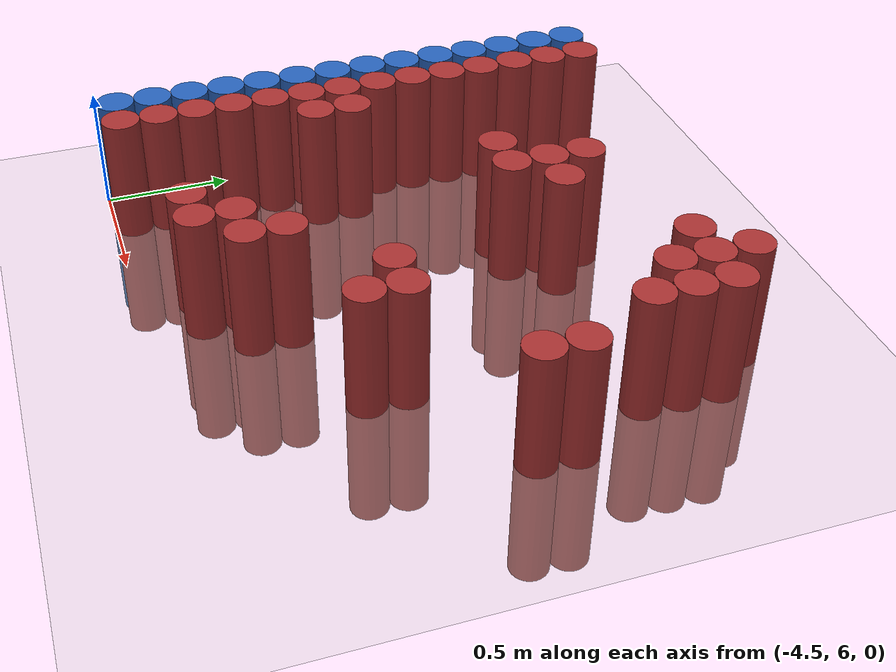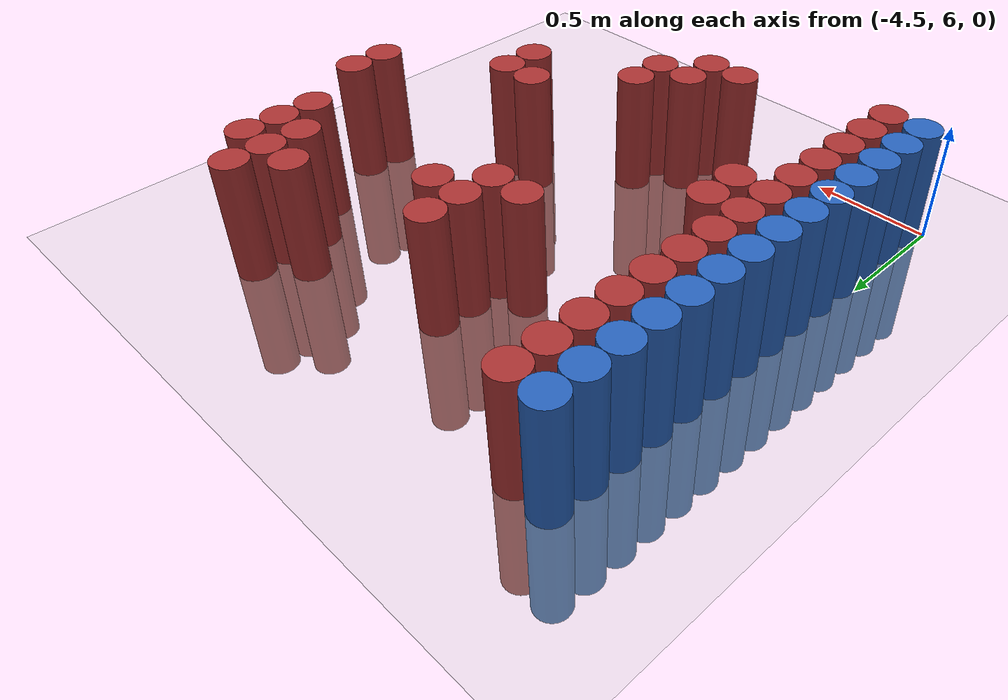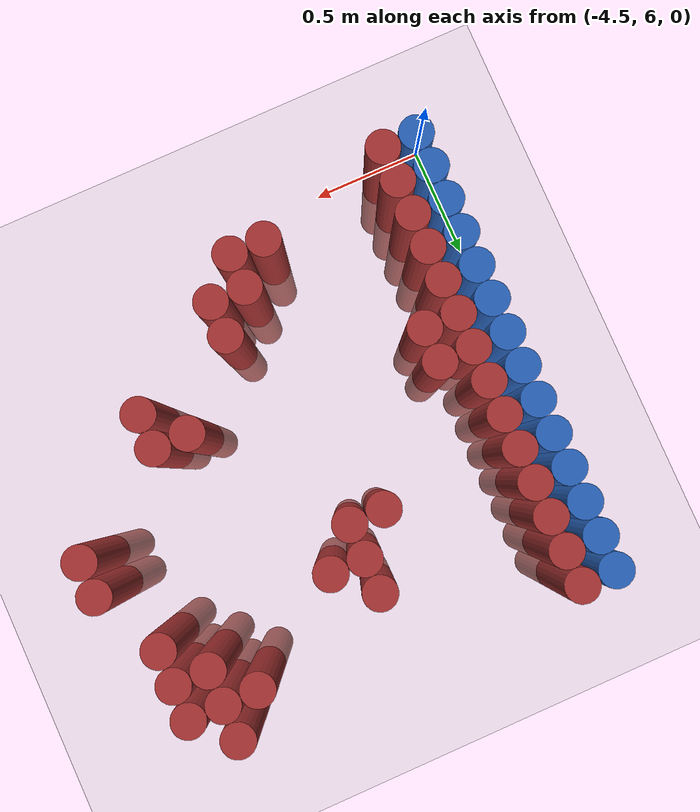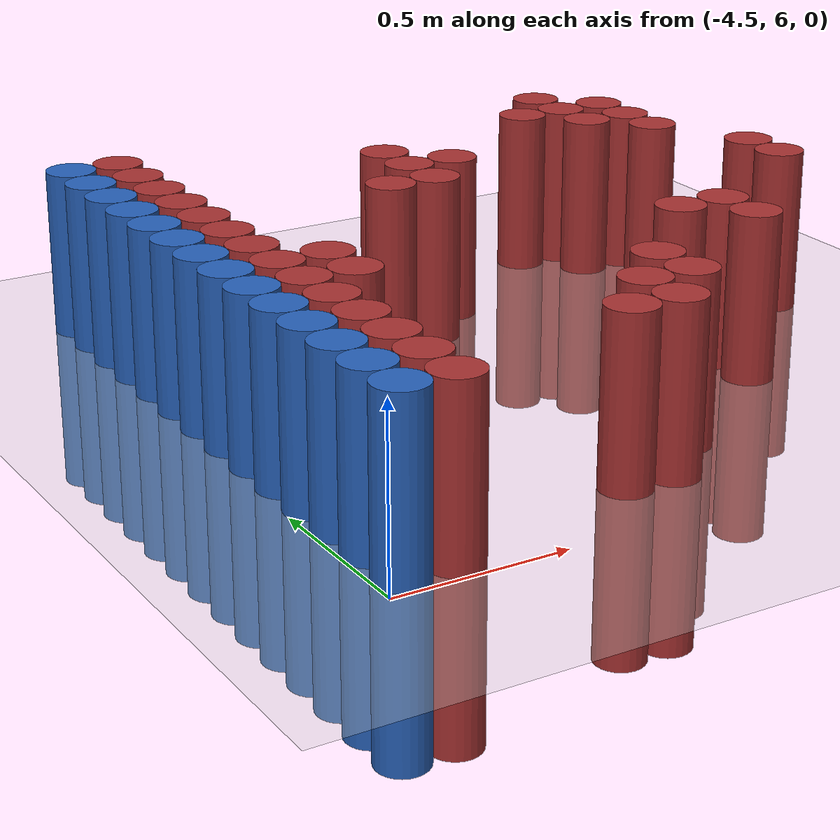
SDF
<sdf version="1.6">
 <world name="default">
  <model name="ground_plane">
   <static>1</static>
   <link name="link">
    <collision name="collision">
     <geometry><plane><normal>0 0 1</normal><size>100 100</size></plane></geometry>
     <surface><friction><ode><mu>100</mu><mu2>50</mu2></ode></friction></surface>
    </collision>
    <visual name="visual">
     <cast_shadows>0</cast_shadows>
     <geometry><plane><normal>0 0 1</normal><size>100 100</size></plane></geometry>
     <material>
      <script><uri>file://media/materials/scripts/gazebo.material</uri><name>Gazebo/Grey</name></script>
     </material>
    </visual>
   </link>
  </model>
  <model name="unit_cylinder_102">
   <static>1</static>
   <pose>-4.425000 6.075000 0.000000 0.000000 0.000000 0.000000</pose>
   <link name="link">
    <inertial>
     <mass>1</mass>
     <inertia><ixx>0.145833</ixx><ixy>0</ixy><ixz>0</ixz><iyy>0.145833</iyy><iyz>0</iyz><izz>0.125</izz></inertia>
    </inertial>
    <collision name="collision">
     <geometry><cylinder><radius>0.075000</radius><length>1</length></cylinder></geometry>
    </collision>
    <visual name="visual">
     <geometry><cylinder><radius>0.075000</radius><length>1</length></cylinder></geometry>
     <material>
      <ambient>0.152000 0.379000 0.720000 1</ambient>
      <diffuse>0.152000 0.379000 0.720000 1</diffuse>
     </material>
     <material>
      <script><name>Gazebo/Grey</name><uri>file://media/materials/scripts/gazebo.material</uri></script>
     </material>
    </visual>
   </link>
  </model>
  <model name="unit_cylinder_103">
   <static>1</static>
   <pose>-4.425000 6.225000 0.000000 0.000000 0.000000 0.000000</pose>
   <link name="link">
    <inertial>
     <mass>1</mass>
     <inertia><ixx>0.145833</ixx><ixy>0</ixy><ixz>0</ixz><iyy>0.145833</iyy><iyz>0</iyz><izz>0.125</izz></inertia>
    </inertial>
    <collision name="collision">
     <geometry><cylinder><radius>0.075000</radius><length>1</length></cylinder></geometry>
    </collision>
    <visual name="visual">
     <geometry><cylinder><radius>0.075000</radius><length>1</length></cylinder></geometry>
     <material>
      <ambient>0.152000 0.379000 0.720000 1</ambient>
      <diffuse>0.152000 0.379000 0.720000 1</diffuse>
     </material>
     <material>
      <script><name>Gazebo/Grey</name><uri>file://media/materials/scripts/gazebo.material</uri></script>
     </material>
    </visual>
   </link>
  </model>
  <model name="unit_cylinder_104">
   <static>1</static>
   <pose>-4.425000 6.375000 0.000000 0.000000 0.000000 0.000000</pose>
   <link name="link">
    <inertial>
     <mass>1</mass>
     <inertia><ixx>0.145833</ixx><ixy>0</ixy><ixz>0</ixz><iyy>0.145833</iyy><iyz>0</iyz><izz>0.125</izz></inertia>
    </inertial>
    <collision name="collision">
     <geometry><cylinder><radius>0.075000</radius><length>1</length></cylinder></geometry>
    </collision>
    <visual name="visual">
     <geometry><cylinder><radius>0.075000</radius><length>1</length></cylinder></geometry>
     <material>
      <ambient>0.152000 0.379000 0.720000 1</ambient>
      <diffuse>0.152000 0.379000 0.720000 1</diffuse>
     </material>
     <material>
      <script><name>Gazebo/Grey</name><uri>file://media/materials/scripts/gazebo.material</uri></script>
     </material>
    </visual>
   </link>
  </model>
  <model name="unit_cylinder_105">
   <static>1</static>
   <pose>-4.425000 6.525000 0.000000 0.000000 0.000000 0.000000</pose>
   <link name="link">
    <inertial>
     <mass>1</mass>
     <inertia><ixx>0.145833</ixx><ixy>0</ixy><ixz>0</ixz><iyy>0.145833</iyy><iyz>0</iyz><izz>0.125</izz></inertia>
    </inertial>
    <collision name="collision">
     <geometry><cylinder><radius>0.075000</radius><length>1</length></cylinder></geometry>
    </collision>
    <visual name="visual">
     <geometry><cylinder><radius>0.075000</radius><length>1</length></cylinder></geometry>
     <material>
      <ambient>0.152000 0.379000 0.720000 1</ambient>
      <diffuse>0.152000 0.379000 0.720000 1</diffuse>
     </material>
     <material>
      <script><name>Gazebo/Grey</name><uri>file://media/materials/scripts/gazebo.material</uri></script>
     </material>
    </visual>
   </link>
  </model>
  <model name="unit_cylinder_106">
   <static>1</static>
   <pose>-4.425000 6.675000 0.000000 0.000000 0.000000 0.000000</pose>
   <link name="link">
    <inertial>
     <mass>1</mass>
     <inertia><ixx>0.145833</ixx><ixy>0</ixy><ixz>0</ixz><iyy>0.145833</iyy><iyz>0</iyz><izz>0.125</izz></inertia>
    </inertial>
    <collision name="collision">
     <geometry><cylinder><radius>0.075000</radius><length>1</length></cylinder></geometry>
    </collision>
    <visual name="visual">
     <geometry><cylinder><radius>0.075000</radius><length>1</length></cylinder></geometry>
     <material>
      <ambient>0.152000 0.379000 0.720000 1</ambient>
      <diffuse>0.152000 0.379000 0.720000 1</diffuse>
     </material>
     <material>
      <script><name>Gazebo/Grey</name><uri>file://media/materials/scripts/gazebo.material</uri></script>
     </material>
    </visual>
   </link>
  </model>
  <model name="unit_cylinder_107">
   <static>1</static>
   <pose>-4.425000 6.825000 0.000000 0.000000 0.000000 0.000000</pose>
   <link name="link">
    <inertial>
     <mass>1</mass>
     <inertia><ixx>0.145833</ixx><ixy>0</ixy><ixz>0</ixz><iyy>0.145833</iyy><iyz>0</iyz><izz>0.125</izz></inertia>
    </inertial>
    <collision name="collision">
     <geometry><cylinder><radius>0.075000</radius><length>1</length></cylinder></geometry>
    </collision>
    <visual name="visual">
     <geometry><cylinder><radius>0.075000</radius><length>1</length></cylinder></geometry>
     <material>
      <ambient>0.152000 0.379000 0.720000 1</ambient>
      <diffuse>0.152000 0.379000 0.720000 1</diffuse>
     </material>
     <material>
      <script><name>Gazebo/Grey</name><uri>file://media/materials/scripts/gazebo.material</uri></script>
     </material>
    </visual>
   </link>
  </model>
  <model name="unit_cylinder_108">
   <static>1</static>
   <pose>-4.425000 6.975000 0.000000 0.000000 0.000000 0.000000</pose>
   <link name="link">
    <inertial>
     <mass>1</mass>
     <inertia><ixx>0.145833</ixx><ixy>0</ixy><ixz>0</ixz><iyy>0.145833</iyy><iyz>0</iyz><izz>0.125</izz></inertia>
    </inertial>
    <collision name="collision">
     <geometry><cylinder><radius>0.075000</radius><length>1</length></cylinder></geometry>
    </collision>
    <visual name="visual">
     <geometry><cylinder><radius>0.075000</radius><length>1</length></cylinder></geometry>
     <material>
      <ambient>0.152000 0.379000 0.720000 1</ambient>
      <diffuse>0.152000 0.379000 0.720000 1</diffuse>
     </material>
     <material>
      <script><name>Gazebo/Grey</name><uri>file://media/materials/scripts/gazebo.material</uri></script>
     </material>
    </visual>
   </link>
  </model>
  <model name="unit_cylinder_109">
   <static>1</static>
   <pose>-4.425000 7.125000 0.000000 0.000000 0.000000 0.000000</pose>
   <link name="link">
    <inertial>
     <mass>1</mass>
     <inertia><ixx>0.145833</ixx><ixy>0</ixy><ixz>0</ixz><iyy>0.145833</iyy><iyz>0</iyz><izz>0.125</izz></inertia>
    </inertial>
    <collision name="collision">
     <geometry><cylinder><radius>0.075000</radius><length>1</length></cylinder></geometry>
    </collision>
    <visual name="visual">
     <geometry><cylinder><radius>0.075000</radius><length>1</length></cylinder></geometry>
     <material>
      <ambient>0.152000 0.379000 0.720000 1</ambient>
      <diffuse>0.152000 0.379000 0.720000 1</diffuse>
     </material>
     <material>
      <script><name>Gazebo/Grey</name><uri>file://media/materials/scripts/gazebo.material</uri></script>
     </material>
    </visual>
   </link>
  </model>
  <model name="unit_cylinder_110">
   <static>1</static>
   <pose>-4.425000 7.275000 0.000000 0.000000 0.000000 0.000000</pose>
   <link name="link">
    <inertial>
     <mass>1</mass>
     <inertia><ixx>0.145833</ixx><ixy>0</ixy><ixz>0</ixz><iyy>0.145833</iyy><iyz>0</iyz><izz>0.125</izz></inertia>
    </inertial>
    <collision name="collision">
     <geometry><cylinder><radius>0.075000</radius><length>1</length></cylinder></geometry>
    </collision>
    <visual name="visual">
     <geometry><cylinder><radius>0.075000</radius><length>1</length></cylinder></geometry>
     <material>
      <ambient>0.152000 0.379000 0.720000 1</ambient>
      <diffuse>0.152000 0.379000 0.720000 1</diffuse>
     </material>
     <material>
      <script><name>Gazebo/Grey</name><uri>file://media/materials/scripts/gazebo.material</uri></script>
     </material>
    </visual>
   </link>
  </model>
  <model name="unit_cylinder_111">
   <static>1</static>
   <pose>-4.425000 7.425000 0.000000 0.000000 0.000000 0.000000</pose>
   <link name="link">
    <inertial>
     <mass>1</mass>
     <inertia><ixx>0.145833</ixx><ixy>0</ixy><ixz>0</ixz><iyy>0.145833</iyy><iyz>0</iyz><izz>0.125</izz></inertia>
    </inertial>
    <collision name="collision">
     <geometry><cylinder><radius>0.075000</radius><length>1</length></cylinder></geometry>
    </collision>
    <visual name="visual">
     <geometry><cylinder><radius>0.075000</radius><length>1</length></cylinder></geometry>
     <material>
      <ambient>0.152000 0.379000 0.720000 1</ambient>
      <diffuse>0.152000 0.379000 0.720000 1</diffuse>
     </material>
     <material>
      <script><name>Gazebo/Grey</name><uri>file://media/materials/scripts/gazebo.material</uri></script>
     </material>
    </visual>
   </link>
  </model>
  <model name="unit_cylinder_112">
   <static>1</static>
   <pose>-4.425000 7.575000 0.000000 0.000000 0.000000 0.000000</pose>
   <link name="link">
    <inertial>
     <mass>1</mass>
     <inertia><ixx>0.145833</ixx><ixy>0</ixy><ixz>0</ixz><iyy>0.145833</iyy><iyz>0</iyz><izz>0.125</izz></inertia>
    </inertial>
    <collision name="collision">
     <geometry><cylinder><radius>0.075000</radius><length>1</length></cylinder></geometry>
    </collision>
    <visual name="visual">
     <geometry><cylinder><radius>0.075000</radius><length>1</length></cylinder></geometry>
     <material>
      <ambient>0.152000 0.379000 0.720000 1</ambient>
      <diffuse>0.152000 0.379000 0.720000 1</diffuse>
     </material>
     <material>
      <script><name>Gazebo/Grey</name><uri>file://media/materials/scripts/gazebo.material</uri></script>
     </material>
    </visual>
   </link>
  </model>
  <model name="unit_cylinder_113">
   <static>1</static>
   <pose>-4.425000 7.725000 0.000000 0.000000 0.000000 0.000000</pose>
   <link name="link">
    <inertial>
     <mass>1</mass>
     <inertia><ixx>0.145833</ixx><ixy>0</ixy><ixz>0</ixz><iyy>0.145833</iyy><iyz>0</iyz><izz>0.125</izz></inertia>
    </inertial>
    <collision name="collision">
     <geometry><cylinder><radius>0.075000</radius><length>1</length></cylinder></geometry>
    </collision>
    <visual name="visual">
     <geometry><cylinder><radius>0.075000</radius><length>1</length></cylinder></geometry>
     <material>
      <ambient>0.152000 0.379000 0.720000 1</ambient>
      <diffuse>0.152000 0.379000 0.720000 1</diffuse>
     </material>
     <material>
      <script><name>Gazebo/Grey</name><uri>file://media/materials/scripts/gazebo.material</uri></script>
     </material>
    </visual>
   </link>
  </model>
  <model name="unit_cylinder_114">
   <static>1</static>
   <pose>-4.425000 7.875000 0.000000 0.000000 0.000000 0.000000</pose>
   <link name="link">
    <inertial>
     <mass>1</mass>
     <inertia><ixx>0.145833</ixx><ixy>0</ixy><ixz>0</ixz><iyy>0.145833</iyy><iyz>0</iyz><izz>0.125</izz></inertia>
    </inertial>
    <collision name="collision">
     <geometry><cylinder><radius>0.075000</radius><length>1</length></cylinder></geometry>
    </collision>
    <visual name="visual">
     <geometry><cylinder><radius>0.075000</radius><length>1</length></cylinder></geometry>
     <material>
      <ambient>0.152000 0.379000 0.720000 1</ambient>
      <diffuse>0.152000 0.379000 0.720000 1</diffuse>
     </material>
     <material>
      <script><name>Gazebo/Grey</name><uri>file://media/materials/scripts/gazebo.material</uri></script>
     </material>
    </visual>
   </link>
  </model>
  <model name="unit_cylinder_115">
   <static>1</static>
   <pose>-4.425000 8.025000 0.000000 0.000000 0.000000 0.000000</pose>
   <link name="link">
    <inertial>
     <mass>1</mass>
     <inertia><ixx>0.145833</ixx><ixy>0</ixy><ixz>0</ixz><iyy>0.145833</iyy><iyz>0</iyz><izz>0.125</izz></inertia>
    </inertial>
    <collision name="collision">
     <geometry><cylinder><radius>0.075000</radius><length>1</length></cylinder></geometry>
    </collision>
    <visual name="visual">
     <geometry><cylinder><radius>0.075000</radius><length>1</length></cylinder></geometry>
     <material>
      <ambient>0.152000 0.379000 0.720000 1</ambient>
      <diffuse>0.152000 0.379000 0.720000 1</diffuse>
     </material>
     <material>
      <script><name>Gazebo/Grey</name><uri>file://media/materials/scripts/gazebo.material</uri></script>
     </material>
    </visual>
   </link>
  </model>
  <model name="unit_cylinder_129">
   <static>1</static>
   <pose>-4.275000 6.075000 0.000000 0.000000 0.000000 0.000000</pose>
   <link name="link">
    <inertial>
     <mass>1</mass>
     <inertia><ixx>0.145833</ixx><ixy>0</ixy><ixz>0</ixz><iyy>0.145833</iyy><iyz>0</iyz><izz>0.125</izz></inertia>
    </inertial>
    <collision name="collision">
     <geometry><cylinder><radius>0.075000</radius><length>1</length></cylinder></geometry>
    </collision>
    <visual name="visual">
     <geometry><cylinder><radius>0.075000</radius><length>1</length></cylinder></geometry>
     <material>
      <ambient>0.648000 0.192000 0.192000 1</ambient>
      <diffuse>0.648000 0.192000 0.192000 1</diffuse>
     </material>
     <material>
      <script><name>Gazebo/Grey</name><uri>file://media/materials/scripts/gazebo.material</uri></script>
     </material>
    </visual>
   </link>
  </model>
  <model name="unit_cylinder_130">
   <static>1</static>
   <pose>-4.275000 6.225000 0.000000 0.000000 0.000000 0.000000</pose>
   <link name="link">
    <inertial>
     <mass>1</mass>
     <inertia><ixx>0.145833</ixx><ixy>0</ixy><ixz>0</ixz><iyy>0.145833</iyy><iyz>0</iyz><izz>0.125</izz></inertia>
    </inertial>
    <collision name="collision">
     <geometry><cylinder><radius>0.075000</radius><length>1</length></cylinder></geometry>
    </collision>
    <visual name="visual">
     <geometry><cylinder><radius>0.075000</radius><length>1</length></cylinder></geometry>
     <material>
      <ambient>0.648000 0.192000 0.192000 1</ambient>
      <diffuse>0.648000 0.192000 0.192000 1</diffuse>
     </material>
     <material>
      <script><name>Gazebo/Grey</name><uri>file://media/materials/scripts/gazebo.material</uri></script>
     </material>
    </visual>
   </link>
  </model>
  <model name="unit_cylinder_131">
   <static>1</static>
   <pose>-4.275000 6.375000 0.000000 0.000000 0.000000 0.000000</pose>
   <link name="link">
    <inertial>
     <mass>1</mass>
     <inertia><ixx>0.145833</ixx><ixy>0</ixy><ixz>0</ixz><iyy>0.145833</iyy><iyz>0</iyz><izz>0.125</izz></inertia>
    </inertial>
    <collision name="collision">
     <geometry><cylinder><radius>0.075000</radius><length>1</length></cylinder></geometry>
    </collision>
    <visual name="visual">
     <geometry><cylinder><radius>0.075000</radius><length>1</length></cylinder></geometry>
     <material>
      <ambient>0.648000 0.192000 0.192000 1</ambient>
      <diffuse>0.648000 0.192000 0.192000 1</diffuse>
     </material>
     <material>
      <script><name>Gazebo/Grey</name><uri>file://media/materials/scripts/gazebo.material</uri></script>
     </material>
    </visual>
   </link>
  </model>
  <model name="unit_cylinder_132">
   <static>1</static>
   <pose>-4.275000 6.525000 0.000000 0.000000 0.000000 0.000000</pose>
   <link name="link">
    <inertial>
     <mass>1</mass>
     <inertia><ixx>0.145833</ixx><ixy>0</ixy><ixz>0</ixz><iyy>0.145833</iyy><iyz>0</iyz><izz>0.125</izz></inertia>
    </inertial>
    <collision name="collision">
     <geometry><cylinder><radius>0.075000</radius><length>1</length></cylinder></geometry>
    </collision>
    <visual name="visual">
     <geometry><cylinder><radius>0.075000</radius><length>1</length></cylinder></geometry>
     <material>
      <ambient>0.648000 0.192000 0.192000 1</ambient>
      <diffuse>0.648000 0.192000 0.192000 1</diffuse>
     </material>
     <material>
      <script><name>Gazebo/Grey</name><uri>file://media/materials/scripts/gazebo.material</uri></script>
     </material>
    </visual>
   </link>
  </model>
  <model name="unit_cylinder_133">
   <static>1</static>
   <pose>-4.275000 6.675000 0.000000 0.000000 0.000000 0.000000</pose>
   <link name="link">
    <inertial>
     <mass>1</mass>
     <inertia><ixx>0.145833</ixx><ixy>0</ixy><ixz>0</ixz><iyy>0.145833</iyy><iyz>0</iyz><izz>0.125</izz></inertia>
    </inertial>
    <collision name="collision">
     <geometry><cylinder><radius>0.075000</radius><length>1</length></cylinder></geometry>
    </collision>
    <visual name="visual">
     <geometry><cylinder><radius>0.075000</radius><length>1</length></cylinder></geometry>
     <material>
      <ambient>0.648000 0.192000 0.192000 1</ambient>
      <diffuse>0.648000 0.192000 0.192000 1</diffuse>
     </material>
     <material>
      <script><name>Gazebo/Grey</name><uri>file://media/materials/scripts/gazebo.material</uri></script>
     </material>
    </visual>
   </link>
  </model>
  <model name="unit_cylinder_134">
   <static>1</static>
   <pose>-4.275000 6.825000 0.000000 0.000000 0.000000 0.000000</pose>
   <link name="link">
    <inertial>
     <mass>1</mass>
     <inertia><ixx>0.145833</ixx><ixy>0</ixy><ixz>0</ixz><iyy>0.145833</iyy><iyz>0</iyz><izz>0.125</izz></inertia>
    </inertial>
    <collision name="collision">
     <geometry><cylinder><radius>0.075000</radius><length>1</length></cylinder></geometry>
    </collision>
    <visual name="visual">
     <geometry><cylinder><radius>0.075000</radius><length>1</length></cylinder></geometry>
     <material>
      <ambient>0.648000 0.192000 0.192000 1</ambient>
      <diffuse>0.648000 0.192000 0.192000 1</diffuse>
     </material>
     <material>
      <script><name>Gazebo/Grey</name><uri>file://media/materials/scripts/gazebo.material</uri></script>
     </material>
    </visual>
   </link>
  </model>
  <model name="unit_cylinder_135">
   <static>1</static>
   <pose>-4.275000 6.975000 0.000000 0.000000 0.000000 0.000000</pose>
   <link name="link">
    <inertial>
     <mass>1</mass>
     <inertia><ixx>0.145833</ixx><ixy>0</ixy><ixz>0</ixz><iyy>0.145833</iyy><iyz>0</iyz><izz>0.125</izz></inertia>
    </inertial>
    <collision name="collision">
     <geometry><cylinder><radius>0.075000</radius><length>1</length></cylinder></geometry>
    </collision>
    <visual name="visual">
     <geometry><cylinder><radius>0.075000</radius><length>1</length></cylinder></geometry>
     <material>
      <ambient>0.648000 0.192000 0.192000 1</ambient>
      <diffuse>0.648000 0.192000 0.192000 1</diffuse>
     </material>
     <material>
      <script><name>Gazebo/Grey</name><uri>file://media/materials/scripts/gazebo.material</uri></script>
     </material>
    </visual>
   </link>
  </model>
  <model name="unit_cylinder_136">
   <static>1</static>
   <pose>-4.275000 7.125000 0.000000 0.000000 0.000000 0.000000</pose>
   <link name="link">
    <inertial>
     <mass>1</mass>
     <inertia><ixx>0.145833</ixx><ixy>0</ixy><ixz>0</ixz><iyy>0.145833</iyy><iyz>0</iyz><izz>0.125</izz></inertia>
    </inertial>
    <collision name="collision">
     <geometry><cylinder><radius>0.075000</radius><length>1</length></cylinder></geometry>
    </collision>
    <visual name="visual">
     <geometry><cylinder><radius>0.075000</radius><length>1</length></cylinder></geometry>
     <material>
      <ambient>0.648000 0.192000 0.192000 1</ambient>
      <diffuse>0.648000 0.192000 0.192000 1</diffuse>
     </material>
     <material>
      <script><name>Gazebo/Grey</name><uri>file://media/materials/scripts/gazebo.material</uri></script>
     </material>
    </visual>
   </link>
  </model>
  <model name="unit_cylinder_137">
   <static>1</static>
   <pose>-4.275000 7.275000 0.000000 0.000000 0.000000 0.000000</pose>
   <link name="link">
    <inertial>
     <mass>1</mass>
     <inertia><ixx>0.145833</ixx><ixy>0</ixy><ixz>0</ixz><iyy>0.145833</iyy><iyz>0</iyz><izz>0.125</izz></inertia>
    </inertial>
    <collision name="collision">
     <geometry><cylinder><radius>0.075000</radius><length>1</length></cylinder></geometry>
    </collision>
    <visual name="visual">
     <geometry><cylinder><radius>0.075000</radius><length>1</length></cylinder></geometry>
     <material>
      <ambient>0.648000 0.192000 0.192000 1</ambient>
      <diffuse>0.648000 0.192000 0.192000 1</diffuse>
     </material>
     <material>
      <script><name>Gazebo/Grey</name><uri>file://media/materials/scripts/gazebo.material</uri></script>
     </material>
    </visual>
   </link>
  </model>
  <model name="unit_cylinder_138">
   <static>1</static>
   <pose>-4.275000 7.425000 0.000000 0.000000 0.000000 0.000000</pose>
   <link name="link">
    <inertial>
     <mass>1</mass>
     <inertia><ixx>0.145833</ixx><ixy>0</ixy><ixz>0</ixz><iyy>0.145833</iyy><iyz>0</iyz><izz>0.125</izz></inertia>
    </inertial>
    <collision name="collision">
     <geometry><cylinder><radius>0.075000</radius><length>1</length></cylinder></geometry>
    </collision>
    <visual name="visual">
     <geometry><cylinder><radius>0.075000</radius><length>1</length></cylinder></geometry>
     <material>
      <ambient>0.648000 0.192000 0.192000 1</ambient>
      <diffuse>0.648000 0.192000 0.192000 1</diffuse>
     </material>
     <material>
      <script><name>Gazebo/Grey</name><uri>file://media/materials/scripts/gazebo.material</uri></script>
     </material>
    </visual>
   </link>
  </model>
  <model name="unit_cylinder_139">
   <static>1</static>
   <pose>-4.275000 7.575000 0.000000 0.000000 0.000000 0.000000</pose>
   <link name="link">
    <inertial>
     <mass>1</mass>
     <inertia><ixx>0.145833</ixx><ixy>0</ixy><ixz>0</ixz><iyy>0.145833</iyy><iyz>0</iyz><izz>0.125</izz></inertia>
    </inertial>
    <collision name="collision">
     <geometry><cylinder><radius>0.075000</radius><length>1</length></cylinder></geometry>
    </collision>
    <visual name="visual">
     <geometry><cylinder><radius>0.075000</radius><length>1</length></cylinder></geometry>
     <material>
      <ambient>0.648000 0.192000 0.192000 1</ambient>
      <diffuse>0.648000 0.192000 0.192000 1</diffuse>
     </material>
     <material>
      <script><name>Gazebo/Grey</name><uri>file://media/materials/scripts/gazebo.material</uri></script>
     </material>
    </visual>
   </link>
  </model>
  <model name="unit_cylinder_140">
   <static>1</static>
   <pose>-4.275000 7.725000 0.000000 0.000000 0.000000 0.000000</pose>
   <link name="link">
    <inertial>
     <mass>1</mass>
     <inertia><ixx>0.145833</ixx><ixy>0</ixy><ixz>0</ixz><iyy>0.145833</iyy><iyz>0</iyz><izz>0.125</izz></inertia>
    </inertial>
    <collision name="collision">
     <geometry><cylinder><radius>0.075000</radius><length>1</length></cylinder></geometry>
    </collision>
    <visual name="visual">
     <geometry><cylinder><radius>0.075000</radius><length>1</length></cylinder></geometry>
     <material>
      <ambient>0.648000 0.192000 0.192000 1</ambient>
      <diffuse>0.648000 0.192000 0.192000 1</diffuse>
     </material>
     <material>
      <script><name>Gazebo/Grey</name><uri>file://media/materials/scripts/gazebo.material</uri></script>
     </material>
    </visual>
   </link>
  </model>
  <model name="unit_cylinder_141">
   <static>1</static>
   <pose>-4.275000 7.875000 0.000000 0.000000 0.000000 0.000000</pose>
   <link name="link">
    <inertial>
     <mass>1</mass>
     <inertia><ixx>0.145833</ixx><ixy>0</ixy><ixz>0</ixz><iyy>0.145833</iyy><iyz>0</iyz><izz>0.125</izz></inertia>
    </inertial>
    <collision name="collision">
     <geometry><cylinder><radius>0.075000</radius><length>1</length></cylinder></geometry>
    </collision>
    <visual name="visual">
     <geometry><cylinder><radius>0.075000</radius><length>1</length></cylinder></geometry>
     <material>
      <ambient>0.648000 0.192000 0.192000 1</ambient>
      <diffuse>0.648000 0.192000 0.192000 1</diffuse>
     </material>
     <material>
      <script><name>Gazebo/Grey</name><uri>file://media/materials/scripts/gazebo.material</uri></script>
     </material>
    </visual>
   </link>
  </model>
  <model name="unit_cylinder_142">
   <static>1</static>
   <pose>-4.275000 8.025000 0.000000 0.000000 0.000000 0.000000</pose>
   <link name="link">
    <inertial>
     <mass>1</mass>
     <inertia><ixx>0.145833</ixx><ixy>0</ixy><ixz>0</ixz><iyy>0.145833</iyy><iyz>0</iyz><izz>0.125</izz></inertia>
    </inertial>
    <collision name="collision">
     <geometry><cylinder><radius>0.075000</radius><length>1</length></cylinder></geometry>
    </collision>
    <visual name="visual">
     <geometry><cylinder><radius>0.075000</radius><length>1</length></cylinder></geometry>
     <material>
      <ambient>0.648000 0.192000 0.192000 1</ambient>
      <diffuse>0.648000 0.192000 0.192000 1</diffuse>
     </material>
     <material>
      <script><name>Gazebo/Grey</name><uri>file://media/materials/scripts/gazebo.material</uri></script>
     </material>
    </visual>
   </link>
  </model>
  <model name="unit_cylinder_149">
   <static>1</static>
   <pose>-4.125000 6.825000 0.000000 0.000000 0.000000 0.000000</pose>
   <link name="link">
    <inertial>
     <mass>1</mass>
     <inertia><ixx>0.145833</ixx><ixy>0</ixy><ixz>0</ixz><iyy>0.145833</iyy><iyz>0</iyz><izz>0.125</izz></inertia>
    </inertial>
    <collision name="collision">
     <geometry><cylinder><radius>0.075000</radius><length>1</length></cylinder></geometry>
    </collision>
    <visual name="visual">
     <geometry><cylinder><radius>0.075000</radius><length>1</length></cylinder></geometry>
     <material>
      <ambient>0.648000 0.192000 0.192000 1</ambient>
      <diffuse>0.648000 0.192000 0.192000 1</diffuse>
     </material>
     <material>
      <script><name>Gazebo/Grey</name><uri>file://media/materials/scripts/gazebo.material</uri></script>
     </material>
    </visual>
   </link>
  </model>
  <model name="unit_cylinder_150">
   <static>1</static>
   <pose>-4.125000 6.975000 0.000000 0.000000 0.000000 0.000000</pose>
   <link name="link">
    <inertial>
     <mass>1</mass>
     <inertia><ixx>0.145833</ixx><ixy>0</ixy><ixz>0</ixz><iyy>0.145833</iyy><iyz>0</iyz><izz>0.125</izz></inertia>
    </inertial>
    <collision name="collision">
     <geometry><cylinder><radius>0.075000</radius><length>1</length></cylinder></geometry>
    </collision>
    <visual name="visual">
     <geometry><cylinder><radius>0.075000</radius><length>1</length></cylinder></geometry>
     <material>
      <ambient>0.648000 0.192000 0.192000 1</ambient>
      <diffuse>0.648000 0.192000 0.192000 1</diffuse>
     </material>
     <material>
      <script><name>Gazebo/Grey</name><uri>file://media/materials/scripts/gazebo.material</uri></script>
     </material>
    </visual>
   </link>
  </model>
  <model name="unit_cylinder_171">
   <static>1</static>
   <pose>-3.675000 6.225000 0.000000 0.000000 0.000000 0.000000</pose>
   <link name="link">
    <inertial>
     <mass>1</mass>
     <inertia><ixx>0.145833</ixx><ixy>0</ixy><ixz>0</ixz><iyy>0.145833</iyy><iyz>0</iyz><izz>0.125</izz></inertia>
    </inertial>
    <collision name="collision">
     <geometry><cylinder><radius>0.075000</radius><length>1</length></cylinder></geometry>
    </collision>
    <visual name="visual">
     <geometry><cylinder><radius>0.075000</radius><length>1</length></cylinder></geometry>
     <material>
      <ambient>0.648000 0.192000 0.192000 1</ambient>
      <diffuse>0.648000 0.192000 0.192000 1</diffuse>
     </material>
     <material>
      <script><name>Gazebo/Grey</name><uri>file://media/materials/scripts/gazebo.material</uri></script>
     </material>
    </visual>
   </link>
  </model>
  <model name="unit_cylinder_172">
   <static>1</static>
   <pose>-3.675000 7.425000 0.000000 0.000000 0.000000 0.000000</pose>
   <link name="link">
    <inertial>
     <mass>1</mass>
     <inertia><ixx>0.145833</ixx><ixy>0</ixy><ixz>0</ixz><iyy>0.145833</iyy><iyz>0</iyz><izz>0.125</izz></inertia>
    </inertial>
    <collision name="collision">
     <geometry><cylinder><radius>0.075000</radius><length>1</length></cylinder></geometry>
    </collision>
    <visual name="visual">
     <geometry><cylinder><radius>0.075000</radius><length>1</length></cylinder></geometry>
     <material>
      <ambient>0.648000 0.192000 0.192000 1</ambient>
      <diffuse>0.648000 0.192000 0.192000 1</diffuse>
     </material>
     <material>
      <script><name>Gazebo/Grey</name><uri>file://media/materials/scripts/gazebo.material</uri></script>
     </material>
    </visual>
   </link>
  </model>
  <model name="unit_cylinder_176">
   <static>1</static>
   <pose>-3.525000 6.225000 0.000000 0.000000 0.000000 0.000000</pose>
   <link name="link">
    <inertial>
     <mass>1</mass>
     <inertia><ixx>0.145833</ixx><ixy>0</ixy><ixz>0</ixz><iyy>0.145833</iyy><iyz>0</iyz><izz>0.125</izz></inertia>
    </inertial>
    <collision name="collision">
     <geometry><cylinder><radius>0.075000</radius><length>1</length></cylinder></geometry>
    </collision>
    <visual name="visual">
     <geometry><cylinder><radius>0.075000</radius><length>1</length></cylinder></geometry>
     <material>
      <ambient>0.648000 0.192000 0.192000 1</ambient>
      <diffuse>0.648000 0.192000 0.192000 1</diffuse>
     </material>
     <material>
      <script><name>Gazebo/Grey</name><uri>file://media/materials/scripts/gazebo.material</uri></script>
     </material>
    </visual>
   </link>
  </model>
  <model name="unit_cylinder_177">
   <static>1</static>
   <pose>-3.525000 6.375000 0.000000 0.000000 0.000000 0.000000</pose>
   <link name="link">
    <inertial>
     <mass>1</mass>
     <inertia><ixx>0.145833</ixx><ixy>0</ixy><ixz>0</ixz><iyy>0.145833</iyy><iyz>0</iyz><izz>0.125</izz></inertia>
    </inertial>
    <collision name="collision">
     <geometry><cylinder><radius>0.075000</radius><length>1</length></cylinder></geometry>
    </collision>
    <visual name="visual">
     <geometry><cylinder><radius>0.075000</radius><length>1</length></cylinder></geometry>
     <material>
      <ambient>0.648000 0.192000 0.192000 1</ambient>
      <diffuse>0.648000 0.192000 0.192000 1</diffuse>
     </material>
     <material>
      <script><name>Gazebo/Grey</name><uri>file://media/materials/scripts/gazebo.material</uri></script>
     </material>
    </visual>
   </link>
  </model>
  <model name="unit_cylinder_178">
   <static>1</static>
   <pose>-3.525000 7.425000 0.000000 0.000000 0.000000 0.000000</pose>
   <link name="link">
    <inertial>
     <mass>1</mass>
     <inertia><ixx>0.145833</ixx><ixy>0</ixy><ixz>0</ixz><iyy>0.145833</iyy><iyz>0</iyz><izz>0.125</izz></inertia>
    </inertial>
    <collision name="collision">
     <geometry><cylinder><radius>0.075000</radius><length>1</length></cylinder></geometry>
    </collision>
    <visual name="visual">
     <geometry><cylinder><radius>0.075000</radius><length>1</length></cylinder></geometry>
     <material>
      <ambient>0.648000 0.192000 0.192000 1</ambient>
      <diffuse>0.648000 0.192000 0.192000 1</diffuse>
     </material>
     <material>
      <script><name>Gazebo/Grey</name><uri>file://media/materials/scripts/gazebo.material</uri></script>
     </material>
    </visual>
   </link>
  </model>
  <model name="unit_cylinder_179">
   <static>1</static>
   <pose>-3.525000 7.575000 0.000000 0.000000 0.000000 0.000000</pose>
   <link name="link">
    <inertial>
     <mass>1</mass>
     <inertia><ixx>0.145833</ixx><ixy>0</ixy><ixz>0</ixz><iyy>0.145833</iyy><iyz>0</iyz><izz>0.125</izz></inertia>
    </inertial>
    <collision name="collision">
     <geometry><cylinder><radius>0.075000</radius><length>1</length></cylinder></geometry>
    </collision>
    <visual name="visual">
     <geometry><cylinder><radius>0.075000</radius><length>1</length></cylinder></geometry>
     <material>
      <ambient>0.648000 0.192000 0.192000 1</ambient>
      <diffuse>0.648000 0.192000 0.192000 1</diffuse>
     </material>
     <material>
      <script><name>Gazebo/Grey</name><uri>file://media/materials/scripts/gazebo.material</uri></script>
     </material>
    </visual>
   </link>
  </model>
  <model name="unit_cylinder_180">
   <static>1</static>
   <pose>-3.525000 7.725000 0.000000 0.000000 0.000000 0.000000</pose>
   <link name="link">
    <inertial>
     <mass>1</mass>
     <inertia><ixx>0.145833</ixx><ixy>0</ixy><ixz>0</ixz><iyy>0.145833</iyy><iyz>0</iyz><izz>0.125</izz></inertia>
    </inertial>
    <collision name="collision">
     <geometry><cylinder><radius>0.075000</radius><length>1</length></cylinder></geometry>
    </collision>
    <visual name="visual">
     <geometry><cylinder><radius>0.075000</radius><length>1</length></cylinder></geometry>
     <material>
      <ambient>0.648000 0.192000 0.192000 1</ambient>
      <diffuse>0.648000 0.192000 0.192000 1</diffuse>
     </material>
     <material>
      <script><name>Gazebo/Grey</name><uri>file://media/materials/scripts/gazebo.material</uri></script>
     </material>
    </visual>
   </link>
  </model>
  <model name="unit_cylinder_185">
   <static>1</static>
   <pose>-3.375000 6.375000 0.000000 0.000000 0.000000 0.000000</pose>
   <link name="link">
    <inertial>
     <mass>1</mass>
     <inertia><ixx>0.145833</ixx><ixy>0</ixy><ixz>0</ixz><iyy>0.145833</iyy><iyz>0</iyz><izz>0.125</izz></inertia>
    </inertial>
    <collision name="collision">
     <geometry><cylinder><radius>0.075000</radius><length>1</length></cylinder></geometry>
    </collision>
    <visual name="visual">
     <geometry><cylinder><radius>0.075000</radius><length>1</length></cylinder></geometry>
     <material>
      <ambient>0.648000 0.192000 0.192000 1</ambient>
      <diffuse>0.648000 0.192000 0.192000 1</diffuse>
     </material>
     <material>
      <script><name>Gazebo/Grey</name><uri>file://media/materials/scripts/gazebo.material</uri></script>
     </material>
    </visual>
   </link>
  </model>
  <model name="unit_cylinder_186">
   <static>1</static>
   <pose>-3.375000 6.525000 0.000000 0.000000 0.000000 0.000000</pose>
   <link name="link">
    <inertial>
     <mass>1</mass>
     <inertia><ixx>0.145833</ixx><ixy>0</ixy><ixz>0</ixz><iyy>0.145833</iyy><iyz>0</iyz><izz>0.125</izz></inertia>
    </inertial>
    <collision name="collision">
     <geometry><cylinder><radius>0.075000</radius><length>1</length></cylinder></geometry>
    </collision>
    <visual name="visual">
     <geometry><cylinder><radius>0.075000</radius><length>1</length></cylinder></geometry>
     <material>
      <ambient>0.648000 0.192000 0.192000 1</ambient>
      <diffuse>0.648000 0.192000 0.192000 1</diffuse>
     </material>
     <material>
      <script><name>Gazebo/Grey</name><uri>file://media/materials/scripts/gazebo.material</uri></script>
     </material>
    </visual>
   </link>
  </model>
  <model name="unit_cylinder_187">
   <static>1</static>
   <pose>-3.375000 7.575000 0.000000 0.000000 0.000000 0.000000</pose>
   <link name="link">
    <inertial>
     <mass>1</mass>
     <inertia><ixx>0.145833</ixx><ixy>0</ixy><ixz>0</ixz><iyy>0.145833</iyy><iyz>0</iyz><izz>0.125</izz></inertia>
    </inertial>
    <collision name="collision">
     <geometry><cylinder><radius>0.075000</radius><length>1</length></cylinder></geometry>
    </collision>
    <visual name="visual">
     <geometry><cylinder><radius>0.075000</radius><length>1</length></cylinder></geometry>
     <material>
      <ambient>0.648000 0.192000 0.192000 1</ambient>
      <diffuse>0.648000 0.192000 0.192000 1</diffuse>
     </material>
     <material>
      <script><name>Gazebo/Grey</name><uri>file://media/materials/scripts/gazebo.material</uri></script>
     </material>
    </visual>
   </link>
  </model>
  <model name="unit_cylinder_198">
   <static>1</static>
   <pose>-3.075000 6.825000 0.000000 0.000000 0.000000 0.000000</pose>
   <link name="link">
    <inertial>
     <mass>1</mass>
     <inertia><ixx>0.145833</ixx><ixy>0</ixy><ixz>0</ixz><iyy>0.145833</iyy><iyz>0</iyz><izz>0.125</izz></inertia>
    </inertial>
    <collision name="collision">
     <geometry><cylinder><radius>0.075000</radius><length>1</length></cylinder></geometry>
    </collision>
    <visual name="visual">
     <geometry><cylinder><radius>0.075000</radius><length>1</length></cylinder></geometry>
     <material>
      <ambient>0.648000 0.192000 0.192000 1</ambient>
      <diffuse>0.648000 0.192000 0.192000 1</diffuse>
     </material>
     <material>
      <script><name>Gazebo/Grey</name><uri>file://media/materials/scripts/gazebo.material</uri></script>
     </material>
    </visual>
   </link>
  </model>
  <model name="unit_cylinder_204">
   <static>1</static>
   <pose>-2.925000 6.675000 0.000000 0.000000 0.000000 0.000000</pose>
   <link name="link">
    <inertial>
     <mass>1</mass>
     <inertia><ixx>0.145833</ixx><ixy>0</ixy><ixz>0</ixz><iyy>0.145833</iyy><iyz>0</iyz><izz>0.125</izz></inertia>
    </inertial>
    <collision name="collision">
     <geometry><cylinder><radius>0.075000</radius><length>1</length></cylinder></geometry>
    </collision>
    <visual name="visual">
     <geometry><cylinder><radius>0.075000</radius><length>1</length></cylinder></geometry>
     <material>
      <ambient>0.648000 0.192000 0.192000 1</ambient>
      <diffuse>0.648000 0.192000 0.192000 1</diffuse>
     </material>
     <material>
      <script><name>Gazebo/Grey</name><uri>file://media/materials/scripts/gazebo.material</uri></script>
     </material>
    </visual>
   </link>
  </model>
  <model name="unit_cylinder_205">
   <static>1</static>
   <pose>-2.925000 6.825000 0.000000 0.000000 0.000000 0.000000</pose>
   <link name="link">
    <inertial>
     <mass>1</mass>
     <inertia><ixx>0.145833</ixx><ixy>0</ixy><ixz>0</ixz><iyy>0.145833</iyy><iyz>0</iyz><izz>0.125</izz></inertia>
    </inertial>
    <collision name="collision">
     <geometry><cylinder><radius>0.075000</radius><length>1</length></cylinder></geometry>
    </collision>
    <visual name="visual">
     <geometry><cylinder><radius>0.075000</radius><length>1</length></cylinder></geometry>
     <material>
      <ambient>0.648000 0.192000 0.192000 1</ambient>
      <diffuse>0.648000 0.192000 0.192000 1</diffuse>
     </material>
     <material>
      <script><name>Gazebo/Grey</name><uri>file://media/materials/scripts/gazebo.material</uri></script>
     </material>
    </visual>
   </link>
  </model>
  <model name="unit_cylinder_206">
   <static>1</static>
   <pose>-2.925000 7.875000 0.000000 0.000000 0.000000 0.000000</pose>
   <link name="link">
    <inertial>
     <mass>1</mass>
     <inertia><ixx>0.145833</ixx><ixy>0</ixy><ixz>0</ixz><iyy>0.145833</iyy><iyz>0</iyz><izz>0.125</izz></inertia>
    </inertial>
    <collision name="collision">
     <geometry><cylinder><radius>0.075000</radius><length>1</length></cylinder></geometry>
    </collision>
    <visual name="visual">
     <geometry><cylinder><radius>0.075000</radius><length>1</length></cylinder></geometry>
     <material>
      <ambient>0.648000 0.192000 0.192000 1</ambient>
      <diffuse>0.648000 0.192000 0.192000 1</diffuse>
     </material>
     <material>
      <script><name>Gazebo/Grey</name><uri>file://media/materials/scripts/gazebo.material</uri></script>
     </material>
    </visual>
   </link>
  </model>
  <model name="unit_cylinder_210">
   <static>1</static>
   <pose>-2.775000 7.725000 0.000000 0.000000 0.000000 0.000000</pose>
   <link name="link">
    <inertial>
     <mass>1</mass>
     <inertia><ixx>0.145833</ixx><ixy>0</ixy><ixz>0</ixz><iyy>0.145833</iyy><iyz>0</iyz><izz>0.125</izz></inertia>
    </inertial>
    <collision name="collision">
     <geometry><cylinder><radius>0.075000</radius><length>1</length></cylinder></geometry>
    </collision>
    <visual name="visual">
     <geometry><cylinder><radius>0.075000</radius><length>1</length></cylinder></geometry>
     <material>
      <ambient>0.648000 0.192000 0.192000 1</ambient>
      <diffuse>0.648000 0.192000 0.192000 1</diffuse>
     </material>
     <material>
      <script><name>Gazebo/Grey</name><uri>file://media/materials/scripts/gazebo.material</uri></script>
     </material>
    </visual>
   </link>
  </model>
  <model name="unit_cylinder_211">
   <static>1</static>
   <pose>-2.775000 7.875000 0.000000 0.000000 0.000000 0.000000</pose>
   <link name="link">
    <inertial>
     <mass>1</mass>
     <inertia><ixx>0.145833</ixx><ixy>0</ixy><ixz>0</ixz><iyy>0.145833</iyy><iyz>0</iyz><izz>0.125</izz></inertia>
    </inertial>
    <collision name="collision">
     <geometry><cylinder><radius>0.075000</radius><length>1</length></cylinder></geometry>
    </collision>
    <visual name="visual">
     <geometry><cylinder><radius>0.075000</radius><length>1</length></cylinder></geometry>
     <material>
      <ambient>0.648000 0.192000 0.192000 1</ambient>
      <diffuse>0.648000 0.192000 0.192000 1</diffuse>
     </material>
     <material>
      <script><name>Gazebo/Grey</name><uri>file://media/materials/scripts/gazebo.material</uri></script>
     </material>
    </visual>
   </link>
  </model>
  <model name="unit_cylinder_212">
   <static>1</static>
   <pose>-2.775000 8.025000 0.000000 0.000000 0.000000 0.000000</pose>
   <link name="link">
    <inertial>
     <mass>1</mass>
     <inertia><ixx>0.145833</ixx><ixy>0</ixy><ixz>0</ixz><iyy>0.145833</iyy><iyz>0</iyz><izz>0.125</izz></inertia>
    </inertial>
    <collision name="collision">
     <geometry><cylinder><radius>0.075000</radius><length>1</length></cylinder></geometry>
    </collision>
    <visual name="visual">
     <geometry><cylinder><radius>0.075000</radius><length>1</length></cylinder></geometry>
     <material>
      <ambient>0.648000 0.192000 0.192000 1</ambient>
      <diffuse>0.648000 0.192000 0.192000 1</diffuse>
     </material>
     <material>
      <script><name>Gazebo/Grey</name><uri>file://media/materials/scripts/gazebo.material</uri></script>
     </material>
    </visual>
   </link>
  </model>
  <model name="unit_cylinder_220">
   <static>1</static>
   <pose>-2.625000 7.575000 0.000000 0.000000 0.000000 0.000000</pose>
   <link name="link">
    <inertial>
     <mass>1</mass>
     <inertia><ixx>0.145833</ixx><ixy>0</ixy><ixz>0</ixz><iyy>0.145833</iyy><iyz>0</iyz><izz>0.125</izz></inertia>
    </inertial>
    <collision name="collision">
     <geometry><cylinder><radius>0.075000</radius><length>1</length></cylinder></geometry>
    </collision>
    <visual name="visual">
     <geometry><cylinder><radius>0.075000</radius><length>1</length></cylinder></geometry>
     <material>
      <ambient>0.648000 0.192000 0.192000 1</ambient>
      <diffuse>0.648000 0.192000 0.192000 1</diffuse>
     </material>
     <material>
      <script><name>Gazebo/Grey</name><uri>file://media/materials/scripts/gazebo.material</uri></script>
     </material>
    </visual>
   </link>
  </model>
  <model name="unit_cylinder_221">
   <static>1</static>
   <pose>-2.625000 7.725000 0.000000 0.000000 0.000000 0.000000</pose>
   <link name="link">
    <inertial>
     <mass>1</mass>
     <inertia><ixx>0.145833</ixx><ixy>0</ixy><ixz>0</ixz><iyy>0.145833</iyy><iyz>0</iyz><izz>0.125</izz></inertia>
    </inertial>
    <collision name="collision">
     <geometry><cylinder><radius>0.075000</radius><length>1</length></cylinder></geometry>
    </collision>
    <visual name="visual">
     <geometry><cylinder><radius>0.075000</radius><length>1</length></cylinder></geometry>
     <material>
      <ambient>0.648000 0.192000 0.192000 1</ambient>
      <diffuse>0.648000 0.192000 0.192000 1</diffuse>
     </material>
     <material>
      <script><name>Gazebo/Grey</name><uri>file://media/materials/scripts/gazebo.material</uri></script>
     </material>
    </visual>
   </link>
  </model>
  <model name="unit_cylinder_222">
   <static>1</static>
   <pose>-2.625000 7.875000 0.000000 0.000000 0.000000 0.000000</pose>
   <link name="link">
    <inertial>
     <mass>1</mass>
     <inertia><ixx>0.145833</ixx><ixy>0</ixy><ixz>0</ixz><iyy>0.145833</iyy><iyz>0</iyz><izz>0.125</izz></inertia>
    </inertial>
    <collision name="collision">
     <geometry><cylinder><radius>0.075000</radius><length>1</length></cylinder></geometry>
    </collision>
    <visual name="visual">
     <geometry><cylinder><radius>0.075000</radius><length>1</length></cylinder></geometry>
     <material>
      <ambient>0.648000 0.192000 0.192000 1</ambient>
      <diffuse>0.648000 0.192000 0.192000 1</diffuse>
     </material>
     <material>
      <script><name>Gazebo/Grey</name><uri>file://media/materials/scripts/gazebo.material</uri></script>
     </material>
    </visual>
   </link>
  </model>
  <model name="unit_cylinder_234">
   <static>1</static>
   <pose>-2.475000 7.125000 0.000000 0.000000 0.000000 0.000000</pose>
   <link name="link">
    <inertial>
     <mass>1</mass>
     <inertia><ixx>0.145833</ixx><ixy>0</ixy><ixz>0</ixz><iyy>0.145833</iyy><iyz>0</iyz><izz>0.125</izz></inertia>
    </inertial>
    <collision name="collision">
     <geometry><cylinder><radius>0.075000</radius><length>1</length></cylinder></geometry>
    </collision>
    <visual name="visual">
     <geometry><cylinder><radius>0.075000</radius><length>1</length></cylinder></geometry>
     <material>
      <ambient>0.648000 0.192000 0.192000 1</ambient>
      <diffuse>0.648000 0.192000 0.192000 1</diffuse>
     </material>
     <material>
      <script><name>Gazebo/Grey</name><uri>file://media/materials/scripts/gazebo.material</uri></script>
     </material>
    </visual>
   </link>
  </model>
  <model name="unit_cylinder_235">
   <static>1</static>
   <pose>-2.475000 7.275000 0.000000 0.000000 0.000000 0.000000</pose>
   <link name="link">
    <inertial>
     <mass>1</mass>
     <inertia><ixx>0.145833</ixx><ixy>0</ixy><ixz>0</ixz><iyy>0.145833</iyy><iyz>0</iyz><izz>0.125</izz></inertia>
    </inertial>
    <collision name="collision">
     <geometry><cylinder><radius>0.075000</radius><length>1</length></cylinder></geometry>
    </collision>
    <visual name="visual">
     <geometry><cylinder><radius>0.075000</radius><length>1</length></cylinder></geometry>
     <material>
      <ambient>0.648000 0.192000 0.192000 1</ambient>
      <diffuse>0.648000 0.192000 0.192000 1</diffuse>
     </material>
     <material>
      <script><name>Gazebo/Grey</name><uri>file://media/materials/scripts/gazebo.material</uri></script>
     </material>
    </visual>
   </link>
  </model>
 </world>
</sdf>
